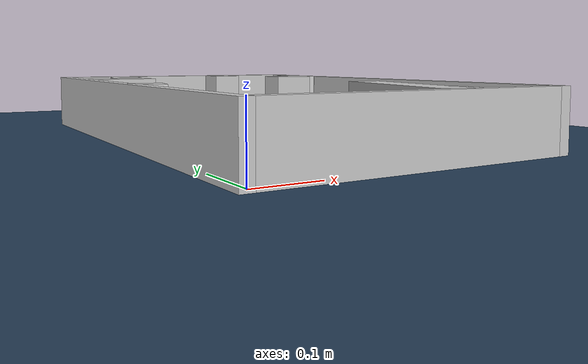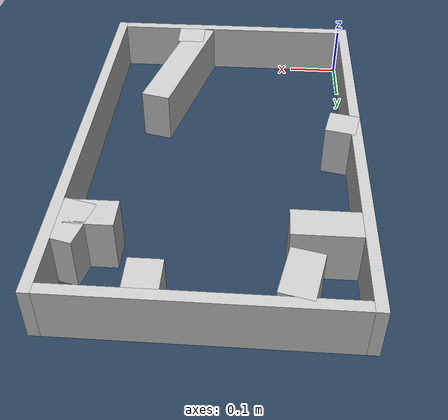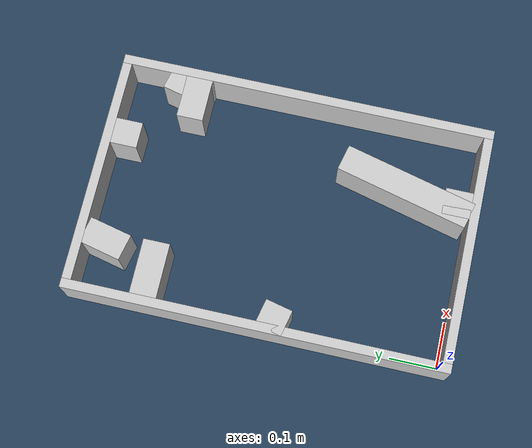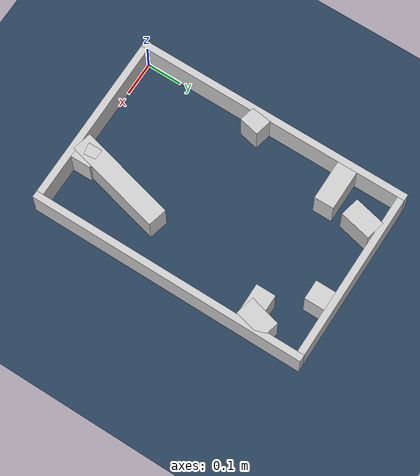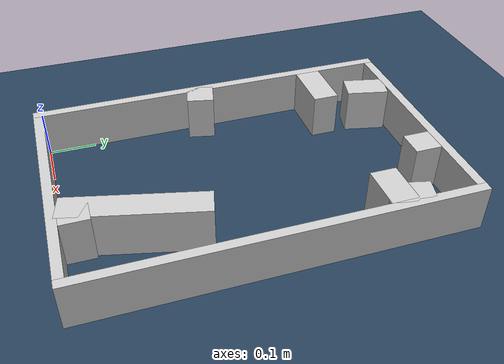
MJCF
<?xml version="1.0" ?>
<mujoco model="generated_real_template">
  <compiler angle="degree"/>
  <option timestep="0.002" integrator="implicitfast" iterations="100" cone="elliptic"/>
  <default>
    <geom density="1"/>
  </default>
  <asset>
    <texture builtin="gradient" height="3072" rgb1="0.3 0.5 0.7" rgb2="0 0 0" type="skybox" width="512"/>
    <texture builtin="checker" height="300" mark="edge" markrgb="0.8 0.8 0.8" name="groundplane" rgb1="0.2 0.3 0.4" rgb2="0.1 0.2 0.3" type="2d" width="300"/>
    <material name="groundplane" reflectance="0.2" texrepeat="5 5" texture="groundplane" texuniform="true"/>
  </asset>
  <worldbody>
    <light dir="0 0 -1" directional="true" pos="0 0 1.5"/>
    <geom name="floor" type="plane" condim="4" friction="0.5 0.005 0.001" material="groundplane" size="0 0 0.05"/>
    <body name="walls">
      <geom name="wall_boundary_left" type="box" condim="4" friction="1.0 0.005 0.0001" rgba="0.8 0.8 0.8 1" pos="-0.010000 0.387500 0.050000" euler="0 0 0.000000" size="0.010000 0.407500 0.050000"/>
      <geom name="wall_boundary_right" type="box" condim="4" friction="1.0 0.005 0.0001" rgba="0.8 0.8 0.8 1" pos="0.500000 0.387500 0.050000" euler="0 0 0.000000" size="0.010000 0.407500 0.050000"/>
      <geom name="wall_boundary_bottom" type="box" condim="4" friction="1.0 0.005 0.0001" rgba="0.8 0.8 0.8 1" pos="0.245000 -0.010000 0.050000" euler="0 0 0.000000" size="0.245000 0.010000 0.050000"/>
      <geom name="wall_boundary_top" type="box" condim="4" friction="1.0 0.005 0.0001" rgba="0.8 0.8 0.8 1" pos="0.245000 0.785000 0.050000" euler="0 0 0.000000" size="0.245000 0.010000 0.050000"/>
      <geom name="wall_inner_1_1" type="box" condim="4" friction="1.0 0.005 0.0001" rgba="0.8 0.8 0.8 1" pos="0.471337 0.643760 0.050000" euler="0 0 -103.837391" size="0.045947 0.028500 0.050000"/>
      <geom name="wall_inner_1_2" type="box" condim="4" friction="1.0 0.005 0.0001" rgba="0.8 0.8 0.8 1" pos="0.347687 0.141759 0.050000" euler="0 0 -103.837391" size="0.145996 0.028500 0.050000"/>
      <geom name="wall_inner_2_1" type="box" condim="4" friction="1.0 0.005 0.0001" rgba="0.8 0.8 0.8 1" pos="0.334505 0.029507 0.050000" euler="0 0 90.000000" size="0.029507 0.028500 0.050000"/>
      <geom name="wall_inner_2_2" type="box" condim="4" friction="1.0 0.005 0.0001" rgba="0.8 0.8 0.8 1" pos="0.334505 0.745986 0.050000" euler="0 0 90.000000" size="0.029014 0.028500 0.050000"/>
      <geom name="wall_inner_3_1" type="box" condim="4" friction="1.0 0.005 0.0001" rgba="0.8 0.8 0.8 1" pos="0.099574 0.729754 0.050000" euler="0 0 -102.720103" size="0.046385 0.028500 0.050000"/>
      <geom name="wall_inner_3_2" type="box" condim="4" friction="1.0 0.005 0.0001" rgba="0.8 0.8 0.8 1" pos="0.014297 0.351966 0.050000" euler="0 0 -102.720103" size="0.029499 0.028500 0.050000"/>
      <geom name="wall_inner_4_1" type="box" condim="4" friction="1.0 0.005 0.0001" rgba="0.8 0.8 0.8 1" pos="0.058525 0.623206 0.050000" euler="0 0 0.000000" size="0.058525 0.028500 0.050000"/>
      <geom name="wall_inner_4_2" type="box" condim="4" friction="1.0 0.005 0.0001" rgba="0.8 0.8 0.8 1" pos="0.443253 0.623206 0.050000" euler="0 0 0.000000" size="0.046747 0.028500 0.050000"/>
    </body>
  </worldbody>
</mujoco>
